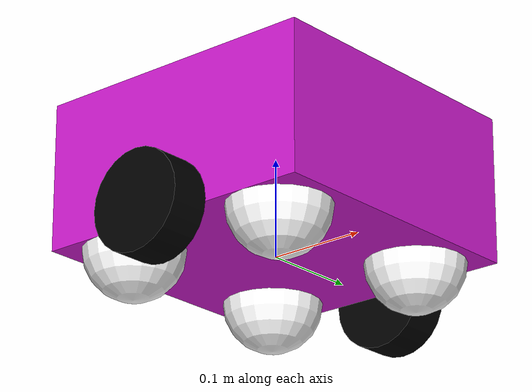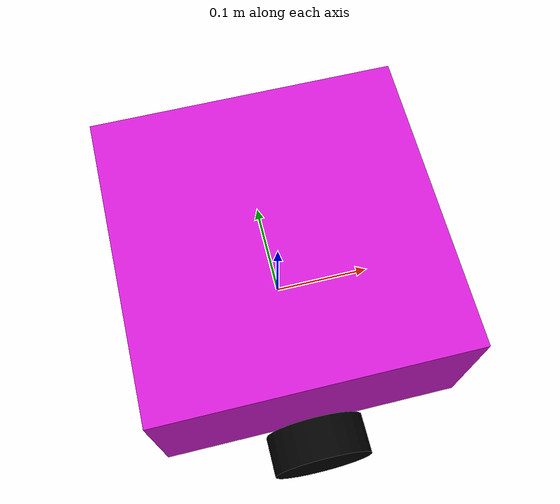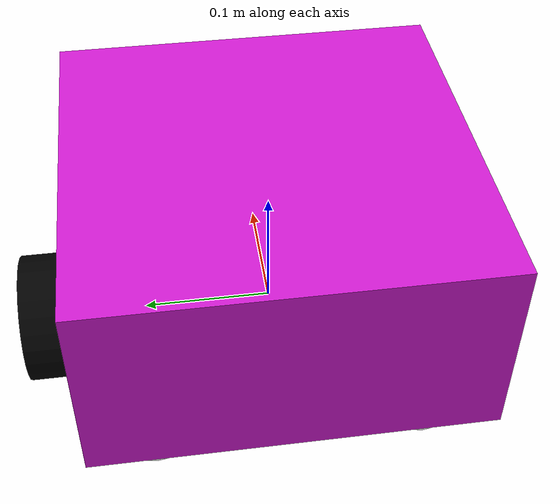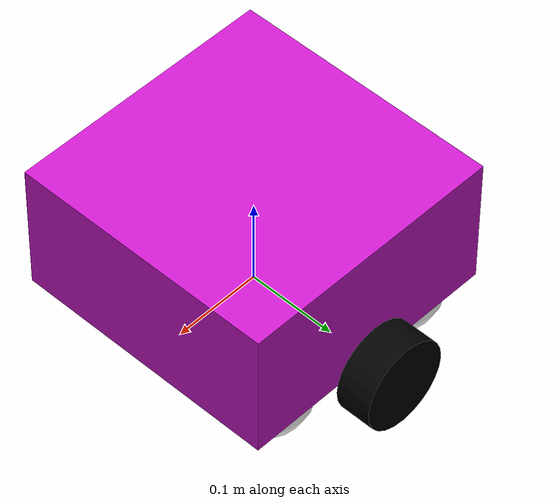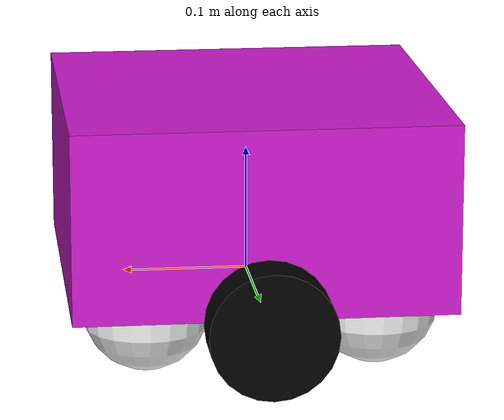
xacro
<?xml version="1.0"?>
<robot xmlns:xacro="http://www.ros.org/wiki/xacro">

    <xacro:include filename="inertial_macros.xacro"/>

    <!-- Materials -->

    <material name="white">
        <color rgba="1 1 1 1"/>
    </material>

    <material name="orange">
        <color rgba="1 0.3 0.1 1"/>
    </material>

    <material name="blue">
        <color rgba="0.2 0.2 1 1"/>
    </material>

    <material name="purple">
        <color rgba="0.8 0.1 0.8 1"/>
    </material>

    <material name="black">
        <color rgba="0 0 0 1"/>
    </material>

    <!-- Base Link -->
    <link name="base_link">

    </link>

    <!-- Chassis -->
    <joint name="chassis_joint" type="fixed">
        <parent link="base_link"/>
        <child link="chassis"/>
        <origin xyz="-0.15 0.0 0.0"/>
    </joint>

    <link name="chassis">
        <visual>
        <origin xyz="0.15 0.0 0.075"/>
            <geometry>
                <box size="0.3 0.3 0.15"/>
            </geometry>
            <material name="purple"/>
        </visual>
        <collision>
        <origin xyz="0.15 0.0 0.075"/>
            <geometry>
                <box size="0.3 0.3 0.15"/>
            </geometry>
        </collision>
        <xacro:inertial_box mass="0.5" x="0.3" y="0.3" z="0.15">
             <origin xyz="0.15 0.0 0.075" rpy="0.0 0.0 0.0"/>
        </xacro:inertial_box>
    </link>

    <gazebo reference="chassis">
        <material> Gazebo/Purple</material>
    </gazebo>

    <!-- Left Wheel -->
    <joint name="left_wheel_joint" type="continuous">
        <origin xyz="0.0 0.175 0.0" rpy="-${pi/2} 0.0 0.0"/>
        <parent link="base_link"/>
        <child link="left_wheel"/>
        <axis xyz="0.0 0.0 1.0"/>
    </joint>

    <link name="left_wheel">
        <visual>
            <geometry>
                <cylinder radius="0.05" length="0.04"/>
            </geometry>
            <material name="black"/>
        </visual>
        <collision>
            <geometry>
                <cylinder radius="0.05" length="0.04"/>
            </geometry>
        </collision>
        <xacro:inertial_cylinder mass="0.1" length="0.04" radius="0.05">
             <origin xyz="0 0 0" rpy="0.0 0.0 0.0"/>
        </xacro:inertial_cylinder>
    </link>

    <gazebo reference="left_wheel">
        <material> Gazebo/Black</material>
    </gazebo>

    <!-- Rigth Wheel -->
    <joint name="right_wheel_joint" type="continuous">
        <origin xyz="0.0 -0.175 0.0" rpy="${pi/2} 0.0 0.0"/>
        <parent link="base_link"/>
        <child link="right_wheel"/>
        <axis xyz="0.0 0.0 -1.0"/>
    </joint>

    <link name="right_wheel">
        <visual>
            <geometry>
                <cylinder radius="0.05" length="0.04"/>
            </geometry>
            <material name="black"/>
        </visual>
        <collision>
            <geometry>
                <cylinder radius="0.05" length="0.04"/>
            </geometry>
        </collision>
        <xacro:inertial_cylinder mass="0.1" length="0.04" radius="0.05">
             <origin xyz="0 0 0" rpy="0.0 0.0 0.0"/>
        </xacro:inertial_cylinder>
    </link>

    <gazebo reference="right_wheel">
        <material> Gazebo/Black</material>
    </gazebo>

    <!-- Caster Wheel 1-->

    <joint name="caster_wheel_1_joint" type="fixed">
        <parent link="chassis"/>
        <child link="caster_wheel_1"/>
        <origin xyz="0.24 0.1 0.0"/>
    </joint>

    <link name="caster_wheel_1">
        <visual>
            <geometry>
                <sphere radius="0.05"/>
            </geometry>
            <material name="white"/>
        </visual>
        <collision>
            <geometry>
                <sphere radius="0.05"/>
            </geometry>
        </collision>
        <xacro:inertial_sphere mass="0.01" radius="0.05">
             <origin xyz="0 0 0" rpy="0.0 0.0 0.0"/>
        </xacro:inertial_sphere>
    </link>

    <gazebo reference="caster_wheel_1">
        <material> Gazebo/White</material>
        <mu1 value="0.001"/>
        <mu2 value="0.001"/>
    </gazebo>

     <!-- Caster Wheel 2-->

    <joint name="caster_wheel_2_joint" type="fixed">
        <parent link="chassis"/>
        <child link="caster_wheel_2"/>
        <origin xyz="0.06 0.1 0.0"/>
    </joint>

    <link name="caster_wheel_2">
        <visual>
            <geometry>
                <sphere radius="0.05"/>
            </geometry>
            <material name="white"/>
        </visual>
        <collision>
            <geometry>
                <sphere radius="0.05"/>
            </geometry>
        </collision>
        <xacro:inertial_sphere mass="0.01" radius="0.05">
             <origin xyz="0 0 0" rpy="0.0 0.0 0.0"/>
        </xacro:inertial_sphere>
    </link>

    <gazebo reference="caster_wheel_2">
        <material> Gazebo/White</material>
        <mu1 value="0.001"/>
        <mu2 value="0.001"/>
    </gazebo>

    <!-- Caster Wheel 3-->

    <joint name="caster_wheel_3_joint" type="fixed">
        <parent link="chassis"/>
        <child link="caster_wheel_3"/>
        <origin xyz="0.06 -0.1 0.0"/>
    </joint>

    <link name="caster_wheel_3">
        <visual>
            <geometry>
                <sphere radius="0.05"/>
            </geometry>
            <material name="white"/>
        </visual>
        <collision>
            <geometry>
                <sphere radius="0.05"/>
            </geometry>
        </collision>
        <xacro:inertial_sphere mass="0.01" radius="0.05">
             <origin xyz="0 0 0" rpy="0.0 0.0 0.0"/>
        </xacro:inertial_sphere>
    </link>

    <gazebo reference="caster_wheel_3">
        <material> Gazebo/White</material>
        <mu1 value="0.001"/>
        <mu2 value="0.001"/>
    </gazebo>

    <!-- Caster Wheel 4-->

    <joint name="caster_wheel_4_joint" type="fixed">
        <parent link="chassis"/>
        <child link="caster_wheel_4"/>
        <origin xyz="0.24 -0.1 0.0"/>
    </joint>

    <link name="caster_wheel_4">
        <visual>
            <geometry>
                <sphere radius="0.05"/>
            </geometry>
            <material name="white"/>
        </visual>
        <collision>
            <geometry>
                <sphere radius="0.05"/>
            </geometry>
        </collision>
        <xacro:inertial_sphere mass="0.01" radius="0.05">
             <origin xyz="0 0 0" rpy="0.0 0.0 0.0"/>
        </xacro:inertial_sphere>
    </link>

    <gazebo reference="caster_wheel_4">
        <material> Gazebo/White</material>
        <mu1 value="0.001"/>
        <mu2 value="0.001"/>
    </gazebo>
</robot>
